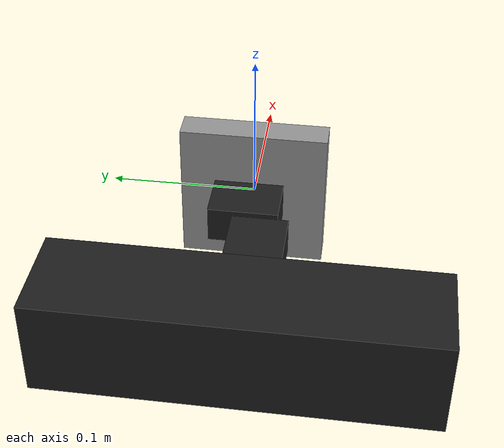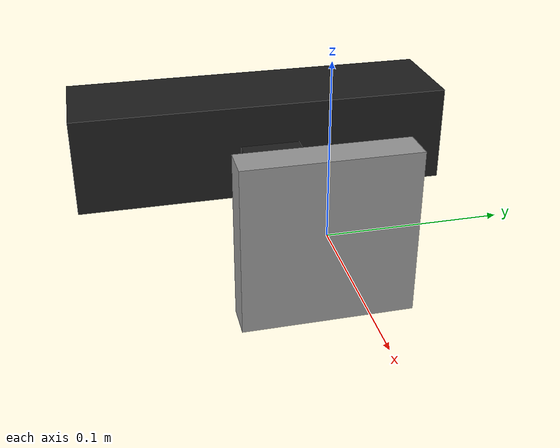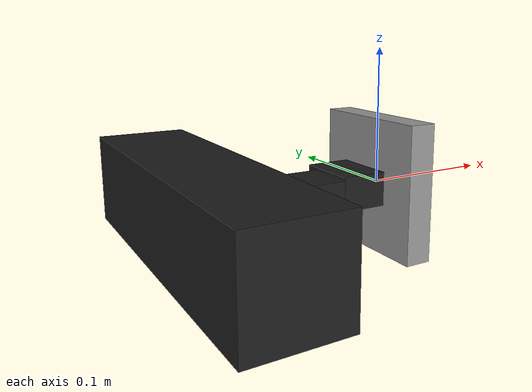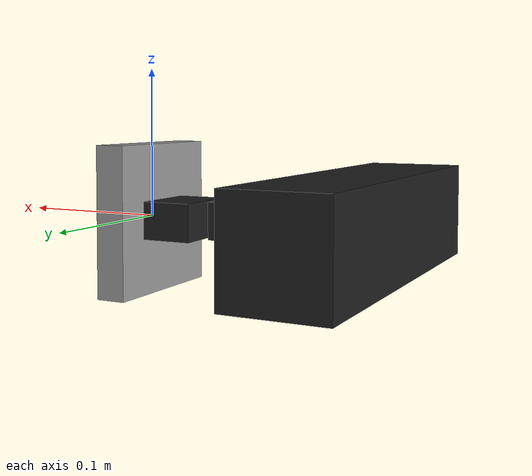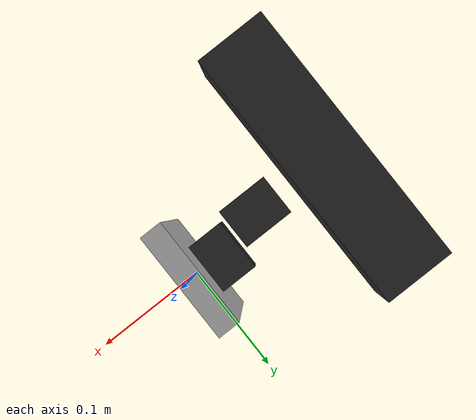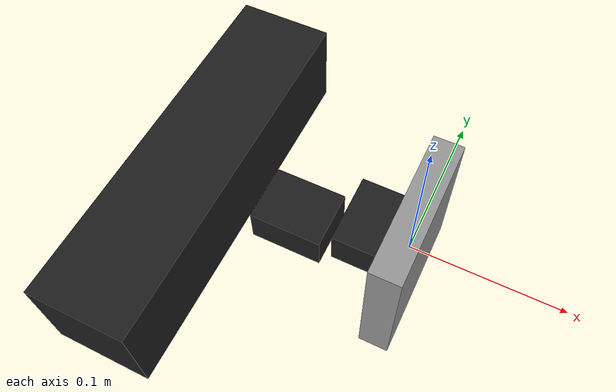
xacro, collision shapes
<?xml version="1.0"?>
<robot name="yuntai_robot" xmlns:xacro="http://ros.org/wiki/xacro">
<xacro:include filename="$(find bulldog_description)/urdf/accessories/dynamixel_AX12_fixed.urdf.xacro" />

<property name="M_PI" value="3.141592654"/>

  <link name="yuntai_base_link">
    <visual>
      <origin xyz="0 0 0" rpy="0 0 0" />
      <geometry>
        <box size="0.02 0.1 0.1"/>
      </geometry>
      <material name="Grey" />
    </visual>
    <collision>
      <origin xyz="0 0 0" rpy="0 0 0" />
      <geometry>
        <box size="0.02 0.1 0.1"/>
      </geometry>
    </collision>
  </link>
  <gazebo reference="yuntai_base_link">
    <material>Gazebo/Grey</material>
  </gazebo>

  <joint name="yuntai_shoulder_pan_joint" type="fixed">
    <origin xyz="-0.025 -0.01 0 " rpy="${M_PI/2} ${M_PI/2} 0" />
    <parent link="yuntai_base_link"/>
    <child link="yuntai_shoulder_pan_link" />
  </joint>

<dynamixel_AX12_fixed parent="yuntai_base_link" name="yuntai_shoulder_pan">
  <origin xyz="0 0 0" rpy="0 0 0"/>
</dynamixel_AX12_fixed>

<joint name="yuntai_shoulder_elbow_joint" type="fixed">
  <origin xyz="0 -0.06 0 " rpy="${M_PI/2} 0 0" />
  <parent link="yuntai_shoulder_pan_link"/>
  <child link="yuntai_shoulder_elbow_link" />
</joint>

<dynamixel_AX12_fixed parent="yuntai_shoulder_pan_link" name="yuntai_shoulder_elbow">
  <origin xyz="0 0 0" rpy="0 0 0"/>
</dynamixel_AX12_fixed>

  <link name="camera_link">
    <visual>
      <origin xyz="0 0 0" rpy="0 0 0" />
      <geometry>
        <box size="0.065 0.25 0.065"/>
      </geometry>
      <material name="black" />
    </visual>
    <collision>
      <origin xyz="0 0 0" rpy="0 0 0" />
      <geometry>
        <box size="0.065 0.25 0.065"/>
      </geometry>
    </collision>
  </link>
  <gazebo reference="camera_link">
    <material>Gazebo/Black</material>
  </gazebo>

<joint name="kinect2_joint" type="fixed">
  <origin xyz="0 0 0.06 " rpy="0 0 ${M_PI}" />
  <parent link="yuntai_shoulder_elbow_link"/>
  <child link="camera_link" />
</joint>

</robot>

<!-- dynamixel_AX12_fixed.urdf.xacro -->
<robot name="dynamixel_AX12_fixed" xmlns:xacro="http://ros.org/wiki/xacro">
  <xacro:property name="M_SCALE" value="0.001"/>

<xacro:macro name="dynamixel_AX12_fixed" params="parent name *origin">
  <link name="${name}_link">
    <inertial>
      <mass value="0.00001" />
      <origin xyz="0 0 0" />
      <inertia ixx="1.0" ixy="0.0" ixz="0.0"
        iyy="1.0" iyz="0.0"
        izz="1.0" />
    </inertial>
    <visual>
      <origin xyz=" 0 0 0 " rpy="0 0 0" />
      <geometry>
        <mesh filename="package://bulldog_description/meshes/ax12_box.stl" scale="0.001 0.001 0.001"/>
      </geometry>
      <material name="black"/>
    </visual>
    <collision>
      <origin xyz="0.0 0.0 -0.01241" rpy="0 0 0" />
      <geometry>
        <box size="0.025 0.038 0.04762"/>
      </geometry>
    </collision>
  </link>
</xacro:macro>

</robot>
